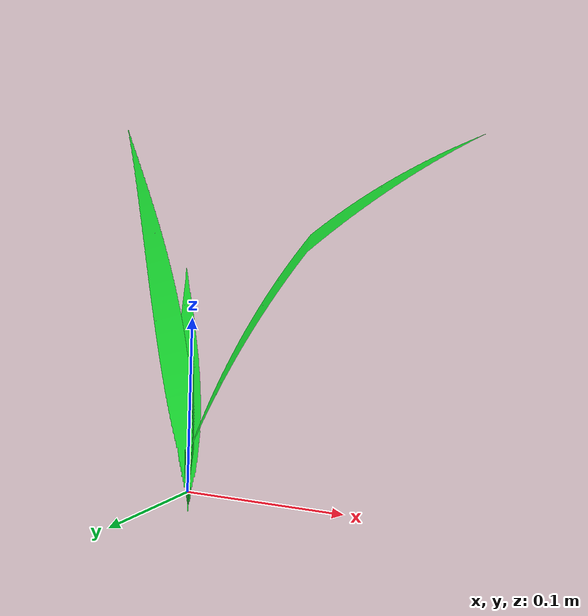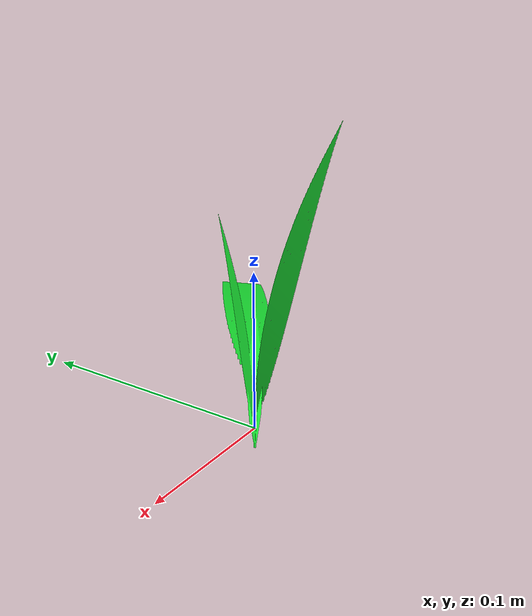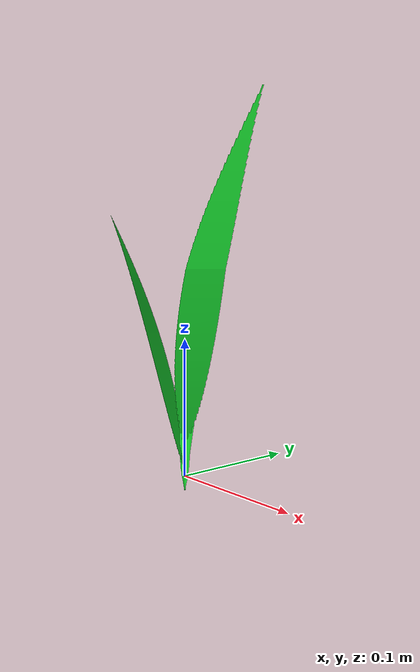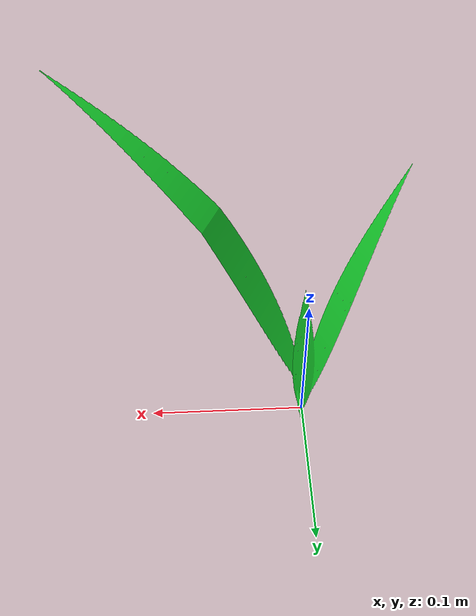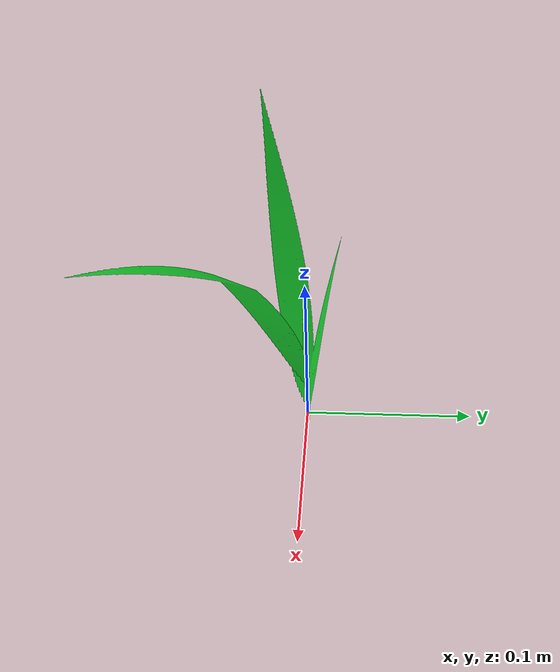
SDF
<?xml version="1.0"?>
<sdf version="1.6">
    <model name="maize_003_day_045">
        <pose frame=" ">0 0 0 0 0 0</pose>
        <link name="link">
            <inertial>
                <pose>0 0 0.01 0 0 0</pose>
                <mass>0.0023138176694717785</mass>
                <inertia>
                    <ixx>0.0033416667</ixx>
                    <ixy>0</ixy>
                    <ixz>0</ixz>
                    <iyy>0.0033416667</iyy>
                    <iyz>0</iyz>
                    <izz>0.000016666667</izz>
                </inertia>
                <pose>0 0 0.1 0 0 0</pose>
            </inertial>
            <collision name="collision">
                <pose>0 0 0.00014743329666089267 0 0 0</pose>
                <geometry>
                    <box>
                        <size>0.02 0.02 0.00029486659332178533</size>
                    </box>
                </geometry>
                <max_contacts>10</max_contacts>
                <surface>
                    <contact>
                        <ode />
                    </contact>
                    <bounce />
                    <friction>
                        <ode>
                            <mu>10</mu>
                            <mu2>10</mu2>
                        </ode>
                    </friction>
                </surface>
            </collision>
            <visual name="visual">
                <pose>0 0 0 1.57079632679 0 0</pose>
                <geometry>
                    <mesh>
                        <uri>model://maize_003_day_045/meshes/maize_003_day_045.dae</uri>
                        <scale>1 1 1</scale>
                    </mesh>
                </geometry>
                <material>
                    <ambient>0.1 0.9 0.1 1</ambient>
                    <diffuse>0.1 0.9 0.2 1</diffuse>
                    <specular>0 0.5 0 0</specular>
                    <emissive>0 0 0 1</emissive>
                </material>
            </visual>
            <self_collide>0</self_collide>
            <enable_wind>0</enable_wind>
            <kinematic>0</kinematic>
        </link>
    </model>
</sdf>
